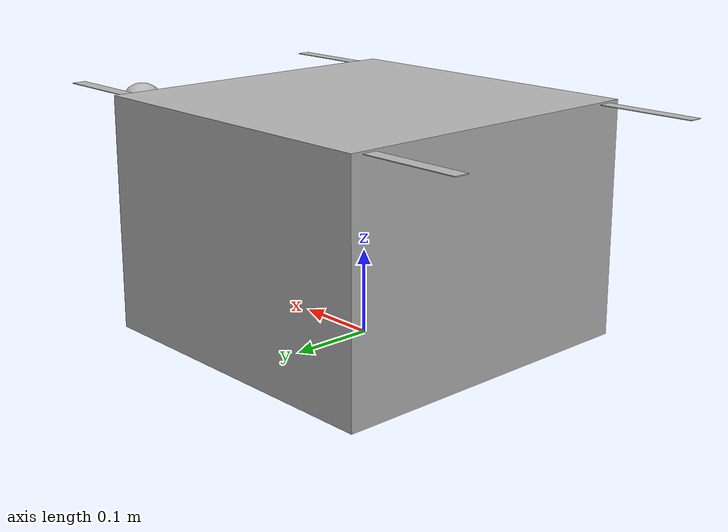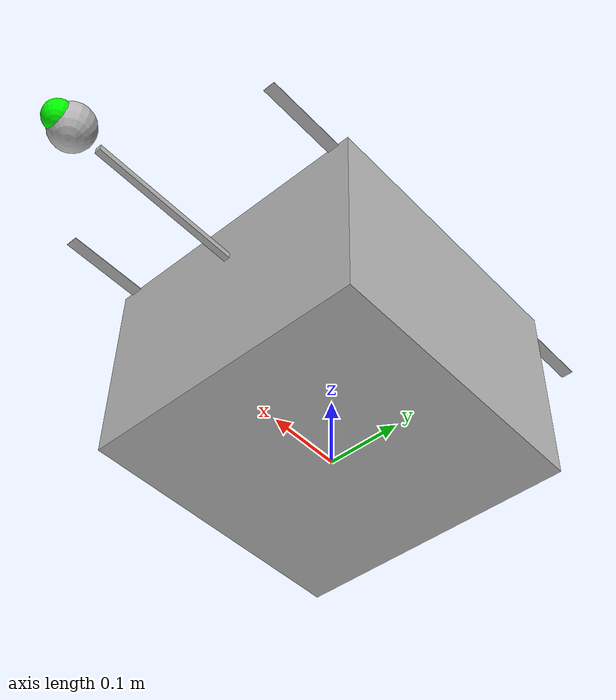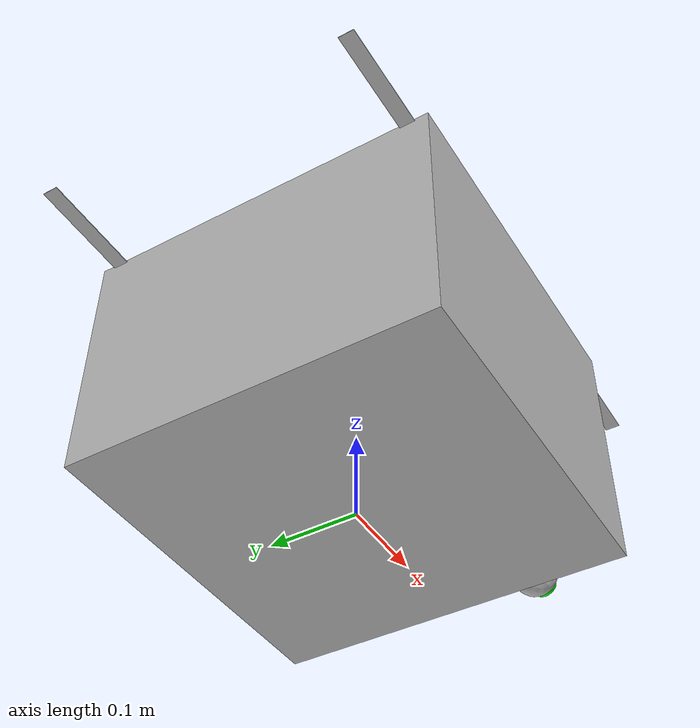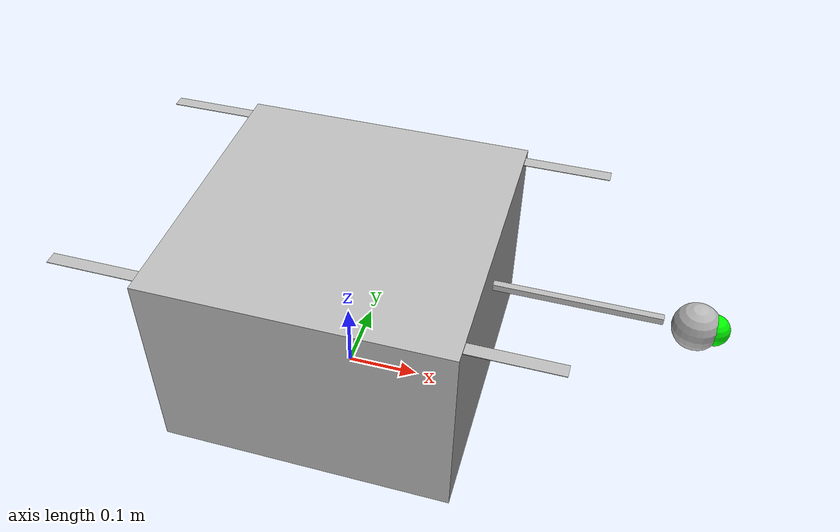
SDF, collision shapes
<?xml version="1.0" encoding="UTF-8"?>
<sdf version='1.9'>
  <model name='x500_dual_force'>
    <pose>0 0 0.217 0 0 0</pose>
    <self_collide>false</self_collide>
    <static>false</static>
    <link name="base_link">
    <inertial>
        <pose>0 0 0.015702 0 0 0</pose>
        <mass>2.247</mass>
        <inertia>
          <ixx>0.0133</ixx>
          <ixy>0</ixy>
          <ixz>0</ixz>
          <iyy>0.0133</iyy>
          <iyz>0</iyz>
          <izz>0.0249</izz>
        </inertia>
      </inertial>
      <gravity>true</gravity>
      <velocity_decay/>
      <visual name="base_link_visual">
        <pose>0 0 0 0 0 0</pose>
        <geometry>
          <mesh>
            <scale>1 1 1</scale>
            <uri>model://custom_x500_dual/meshes/uav_frame_x500_simple.dae</uri>
          </mesh>
        </geometry>
      </visual>
      <!-- Collision definition -->
      <collision name="base_link_collision_0">
        <pose> 0 0 -0.076276 0 0 0</pose>
        <geometry>
          <box>
            <size>0.40 0.40 0.278 </size>
          </box>
        </geometry>
        <surface>
          <contact>
            <ode>
              <min_depth>0.001</min_depth>
              <max_vel>0</max_vel>
            </ode>
          </contact>
          <friction>
            <ode/>
          </friction>
        </surface>
      </collision>
<!-- Collision definition END-->
<!-- Flight Sensors  -->
      <sensor name="air_pressure_sensor" type="air_pressure">
        <always_on>1</always_on>
        <update_rate>50</update_rate>
        <air_pressure>
          <pressure>
            <noise type="gaussian">
              <mean>0</mean>
              <stddev>0.01</stddev>
            </noise>
          </pressure>
        </air_pressure>
      </sensor>

      <sensor name="imu_sensor" type="imu">
        <always_on>1</always_on>
        <update_rate>250</update_rate>
      </sensor>
<!-- Flight Sensors  -->
    </link>
<!-- Propellers definition -->
    <link name="rotor_0">
        <gravity>true</gravity>
        <self_collide>false</self_collide>
        <velocity_decay/>
        <pose>0.176876 -0.176876 0.06 0 0 0</pose>
        <inertial>
            <pose>0 0 0 0 0 0</pose>
              <mass>0.005</mass>
              <inertia>
                <ixx>9.75e-07</ixx>
                <ixy>0</ixy>
                <ixz>0</ixz>
                <iyy>0.000166704</iyy>
                <iyz>0</iyz>
                <izz>0.000167604</izz>
              </inertia>
        </inertial>
       <visual name="rotor_0_visual">
        <pose>0 0 0 0 0 0</pose>
        <geometry>
          <mesh>
            <scale>1 1 1</scale>
            <uri>model://custom_x500_dual/meshes/holybro_propeller_ccw.dae</uri>
          </mesh>
        </geometry>
      </visual>
      <collision name="rotor_0_collision">
        <pose>0 0 0 0 0 0 </pose>
        <geometry>
          <box>
            <size>0.2792307692307692 0.016923076923076923 0.0008461538461538462</size>
          </box>
        </geometry>
        <surface>
          <contact>
            <ode>
              <min_depth>0.001</min_depth>
              <max_vel>0</max_vel>
            </ode>
          </contact>
          <friction>
            <ode/>
          </friction>
        </surface>
      </collision>
    </link>
    <joint name="rotor_0_joint" type="revolute">
      <parent>base_link</parent>
      <child>rotor_0</child>
      <axis>
        <xyz>0 0 1</xyz>
        <limit>
          <lower>-1e+16</lower>
          <upper>1e+16</upper>
        </limit>
        <dynamics>
          <spring_reference>0</spring_reference>
          <spring_stiffness>0</spring_stiffness>
        </dynamics>
      </axis>
    </joint>

    <link name="rotor_1">
        <gravity>true</gravity>
        <self_collide>false</self_collide>
        <velocity_decay/>
        <pose>-0.176876 0.176876 0.06 0 0 0</pose>
        <inertial>
            <pose>0 0 0 0 0 0</pose>
              <mass>0.005</mass>
              <inertia>
                <ixx>9.75e-07</ixx>
                <ixy>0</ixy>
                <ixz>0</ixz>
                <iyy>0.000166704</iyy>
                <iyz>0</iyz>
                <izz>0.000167604</izz>
              </inertia>
        </inertial>
       <visual name="rotor_1_visual">
        <pose>0 0 0 0 0 0</pose>
        <geometry>
          <mesh>
            <scale>1 1 1</scale>
            <uri>model://custom_x500_dual/meshes/holybro_propeller_ccw.dae</uri>
          </mesh>
        </geometry>
      </visual>
      <collision name="rotor_1_collision">
        <pose>0 0 0 0 0 0 </pose>
        <geometry>
          <box>
            <size>0.2792307692307692 0.016923076923076923 0.0008461538461538462</size>
          </box>
        </geometry>
        <surface>
          <contact>
            <ode>
              <min_depth>0.001</min_depth>
              <max_vel>0</max_vel>
            </ode>
          </contact>
          <friction>
            <ode/>
          </friction>
        </surface>
      </collision>
    </link>
    <joint name="rotor_1_joint" type="revolute">
      <parent>base_link</parent>
      <child>rotor_1</child>
      <axis>
        <xyz>0 0 1</xyz>
        <limit>
          <lower>-1e+16</lower>
          <upper>1e+16</upper>
        </limit>
        <dynamics>
          <spring_reference>0</spring_reference>
          <spring_stiffness>0</spring_stiffness>
        </dynamics>
      </axis>
    </joint>

    <link name="rotor_2">
        <gravity>true</gravity>
        <self_collide>false</self_collide>
        <velocity_decay/>
        <pose> 0.176876 0.176876 0.06 0 0 0</pose>
        <inertial>
            <pose>0 0 0 0 0 0</pose>
              <mass>0.005</mass>
              <inertia>
                <ixx>9.75e-07</ixx>
                <ixy>0</ixy>
                <ixz>0</ixz>
                <iyy>0.000166704</iyy>
                <iyz>0</iyz>
                <izz>0.000167604</izz>
              </inertia>
        </inertial>
       <visual name="rotor_2_visual">
        <pose>0 0 0 0 0 0</pose>
        <geometry>
          <mesh>
            <scale>1 1 1</scale>
            <uri>model://custom_x500_dual/meshes/holybro_propeller_cw.dae</uri>
          </mesh>
        </geometry>
      </visual>
      <collision name="rotor_2_collision">
        <pose>0 0 0 0 0 0 </pose>
        <geometry>
          <box>
            <size>0.2792307692307692 0.016923076923076923 0.0008461538461538462</size>
          </box>
        </geometry>
        <surface>
          <contact>
            <ode>
              <min_depth>0.001</min_depth>
              <max_vel>0</max_vel>
            </ode>
          </contact>
          <friction>
            <ode/>
          </friction>
        </surface>
      </collision>
    </link>
    <joint name="rotor_2_joint" type="revolute">
      <parent>base_link</parent>
      <child>rotor_2</child>
      <axis>
        <xyz>0 0 1</xyz>
        <limit>
          <lower>-1e+16</lower>
          <upper>1e+16</upper>
        </limit>
        <dynamics>
          <spring_reference>0</spring_reference>
          <spring_stiffness>0</spring_stiffness>
        </dynamics>
      </axis>
    </joint>

    <link name="rotor_3">
        <gravity>true</gravity>
        <self_collide>false</self_collide>
        <velocity_decay/>
        <pose> -0.176876 -0.176876 0.06 0 0 0</pose>
        <inertial>
            <pose>0 0 0 0 0 0</pose>
              <mass>0.005</mass>
              <inertia>
                <ixx>9.75e-07</ixx>
                <ixy>0</ixy>
                <ixz>0</ixz>
                <iyy>0.000166704</iyy>
                <iyz>0</iyz>
                <izz>0.000167604</izz>
              </inertia>
        </inertial>
       <visual name="rotor_3_visual">
        <pose>0 0 0 0 0 0</pose>
        <geometry>
          <mesh>
            <scale>1 1 1</scale>
            <uri>model://custom_x500_dual/meshes/holybro_propeller_cw.dae</uri>
          </mesh>
        </geometry>
      </visual>
      <collision name="rotor_3_collision">
        <pose>0 0 0 0 0 0 </pose>
        <geometry>
          <box>
            <size>0.2792307692307692 0.016923076923076923 0.0008461538461538462</size>
          </box>
        </geometry>
        <surface>
          <contact>
            <ode>
              <min_depth>0.001</min_depth>
              <max_vel>0</max_vel>
            </ode>
          </contact>
          <friction>
            <ode/>
          </friction>
        </surface>
      </collision>
    </link>
    <joint name="rotor_3_joint" type="revolute">
      <parent>base_link</parent>
      <child>rotor_3</child>
      <axis>
        <xyz>0 0 1</xyz>
        <limit>
          <lower>-1e+16</lower>
          <upper>1e+16</upper>
        </limit>
        <dynamics>
          <spring_reference>0</spring_reference>
          <spring_stiffness>0</spring_stiffness>
        </dynamics>
      </axis>
    </joint>
<!-- Propellers definition END-->
<!-- EDF Mass -->
  <link name="edf_1_ball">
        <gravity>true</gravity>
        <self_collide>false</self_collide>
        <velocity_decay/>
        <pose> 0.100 0 0.036 0 0 0 </pose>
        <inertial>
            <mass>0.175</mass>
            <inertia>
              <ixx>6.3787e-05</ixx>
              <iyy>8.6158e-05</iyy>
              <izz>8.6158e-05</izz>
            </inertia>
        </inertial>
    </link>

    <joint name="edf_1_mass" type="fixed">
      <parent>base_link</parent>
      <child>edf_1_ball</child>
    </joint>
<!-- EDF Mass -->

<!-- EDF Mass -->
  <link name="edf_2_ball">
        <gravity>true</gravity>
        <self_collide>false</self_collide>
        <velocity_decay/>
        <pose> -0.100 0 0.036 0 0 3.145159 </pose>
         <inertial>
            <mass>0.175</mass>
            <inertia>
              <ixx>6.3787e-05</ixx>
              <iyy>8.6158e-05</iyy>
              <izz>8.6158e-05</izz>
            </inertia>
        </inertial>
    </link>

    <joint name="edf_2_mass" type="fixed">
      <parent>base_link</parent>
      <child>edf_2_ball</child>
    </joint>
<!-- EDF Mass -->

<!-- EDF Frame 200 END -->
  <link name="edf_1_body">
        <gravity>true</gravity>
        <self_collide>false</self_collide>
        <velocity_decay/>
        <pose> 0.100 0 0.016 0 0 0 </pose>
        <inertial>
          <mass>0.00000001</mass>
          <inertia>
            <ixx>0.000001</ixx>
            <ixy>0.0</ixy>
            <iyy>0.000001</iyy>
            <ixz>0.0</ixz>
            <iyz>0.0</iyz>
            <izz>0.000001</izz>
          </inertia>
        </inertial>
       <visual name="edf_1_visual">
        <pose>0 0 0 0 0 0</pose>
        <geometry>
          <mesh>
            <scale>1 1 1</scale>
            <uri>model://custom_x500_dual/meshes/edf_housing.dae</uri>
          </mesh>
        </geometry>
      </visual>
      <collision name="edf_1_collision">
        <pose>0 0 0 0 0 0 </pose>
        <geometry>
          <box>
            <size>0.01 0.01 0.01</size>
          </box>
        </geometry>
        <surface>
          <contact>
            <ode>
              <min_depth>0.001</min_depth>
              <max_vel>0</max_vel>
            </ode>
          </contact>
          <friction>
            <ode/>
          </friction>
        </surface>
      </collision>
    </link>
    <joint name="edf_1_joint" type="revolute">
      <parent>base_link</parent>
      <child>edf_1_body</child>
      <pose> 0 0 0 0 0 0 </pose>
      <axis>
        <xyz>0 0 1</xyz>
        <limit>
          <lower>-0.53</lower>
          <upper>0.53</upper>
        </limit>
        <dynamics>
          <friction>1.0</friction>
          <spring_reference>0</spring_reference>
          <spring_stiffness>0</spring_stiffness>
        </dynamics>
      </axis>
    </joint>

    <link name="edf_2_body">
        <gravity>true</gravity>
        <self_collide>false</self_collide>
        <velocity_decay/>
        <pose> -0.100 0 0.016 0 0 3.145159 </pose>
        <inertial>
          <mass>0.00000001</mass>
          <inertia>
            <ixx>0.000001</ixx>
            <ixy>0.0</ixy>
            <iyy>0.000001</iyy>
            <ixz>0.0</ixz>
            <iyz>0.0</iyz>
            <izz>0.000001</izz>
          </inertia>
        </inertial>
      <visual name="edf_2_visual">
        <pose>0 0 0 0 0 0</pose>
        <geometry>
          <mesh>
            <scale>1 1 1</scale>
            <uri>model://custom_x500_dual/meshes/edf_housing.dae</uri>
          </mesh>
        </geometry>
      </visual>
      <collision name="edf_2_collision">
        <pose>0 0 0 0 0 0 </pose>
        <geometry>
          <box>
            <size>0.01 0.01 0.01</size>
          </box>
        </geometry>
        <surface>
          <contact>
            <ode>
              <min_depth>0.001</min_depth>
              <max_vel>0</max_vel>
            </ode>
          </contact>
          <friction>
            <ode/>
          </friction>
        </surface>
      </collision>
    </link>
    <joint name="edf_2_joint" type="revolute">
      <parent>base_link</parent>
      <child>edf_2_body</child>
      <pose> 0 0 0 0 0 0 </pose>
      <axis>
        <xyz>0 0 1</xyz>
        <limit>
          <lower>-0.53</lower>
          <upper>0.53</upper>
        </limit>
        <dynamics>
          <friction>1.0</friction>
          <spring_reference>0</spring_reference>
          <spring_stiffness>0</spring_stiffness>
        </dynamics>
      </axis>
    </joint>

<!-- Horizontal thrusters -->
    <link name="rotor_5">
        <gravity>true</gravity>
        <self_collide>false</self_collide>
        <velocity_decay/>
        <pose> -0.100 0 0.016 0 1.5708 0</pose>
        <inertial>
            <pose>0 0 0 0 0 0</pose>
              <mass>0.005</mass>
              <inertia>
                <ixx>9.75e-07</ixx>
                <ixy>0</ixy>
                <ixz>0</ixz>
                <iyy>0.000166704</iyy>
                <iyz>0</iyz>
                <izz>0.000167604</izz>
              </inertia>
        </inertial>
       <visual name="rotor_5_visual">
        <pose>0 0 0 0 0 0</pose>
        <geometry>
          <mesh>
            <scale>1 1 1</scale>
            <uri>model://custom_x500_dual/meshes/edf_impeler.dae</uri>
          </mesh>
        </geometry>
      </visual>
      <collision name="rotor_5_collision">
        <pose>0 0 0 0 0 0 </pose>
        <geometry>
          <box>
            <size>0.0008461538461538462 0.016923076923076923 0.004</size>
          </box>
        </geometry>
        <surface>
          <contact>
            <ode>
              <min_depth>0.001</min_depth>
              <max_vel>0</max_vel>
            </ode>
          </contact>
          <friction>
            <ode/>
          </friction>
        </surface>
      </collision>
    </link>
    <joint name="rotor_5_joint" type="revolute">
      <parent>edf_2_body</parent>
      <child>rotor_5</child>
      <axis>
        <xyz>0 0 1</xyz>
        <limit>
          <lower>-1e+16</lower>
          <upper>1e+16</upper>
        </limit>
        <dynamics>
          <spring_reference>0</spring_reference>
          <spring_stiffness>0</spring_stiffness>
        </dynamics>
      </axis>
    </joint>

    <link name="rotor_4">
        <gravity>true</gravity>
        <self_collide>false</self_collide>
        <velocity_decay/>
        <pose> 0.100 0 0.016  0 1.5708 3.145159</pose>
        <inertial>
            <pose>0 0 0 0 0 0</pose>
              <mass>0.005</mass>
              <inertia>
                <ixx>9.75e-07</ixx>
                <ixy>0</ixy>
                <ixz>0</ixz>
                <iyy>0.000166704</iyy>
                <iyz>0</iyz>
                <izz>0.000167604</izz>
              </inertia>
        </inertial>
       <visual name="rotor_4_visual">
        <pose>0 0 0 0 0 0</pose>
        <geometry>
          <mesh>
            <scale>1 1 1</scale>
            <uri>model://custom_x500_dual/meshes/edf_impeler.dae</uri>
          </mesh>
        </geometry>
      </visual>
      <collision name="rotor_4_collision">
        <pose>0 0 0 0 0 0 </pose>
        <geometry>
          <box>
            <size>0.0008461538461538462 0.016923076923076923 0.004</size>
          </box>
        </geometry>
        <surface>
          <contact>
            <ode>
              <min_depth>0.001</min_depth>
              <max_vel>0</max_vel>
            </ode>
          </contact>
          <friction>
            <ode/>
          </friction>
        </surface>
      </collision>
    </link>

    <joint name="rotor_4_joint" type="revolute">
      <parent>edf_1_body</parent>
      <child>rotor_4</child>
      <axis>
        <xyz>0 0 1</xyz>
        <limit>
          <lower>-1e+16</lower>
          <upper>1e+16</upper>
        </limit>
        <dynamics>
          <spring_reference>0</spring_reference>
          <spring_stiffness>0</spring_stiffness>
        </dynamics>
      </axis>
    </joint>
<!-- Manipulator arm  END -->
<!-- Manipulator arm  -->
    <link name="manipulator_arm">
        <gravity>true</gravity>
        <self_collide>false</self_collide>
        <velocity_decay/>
        <pose> 0.40 0 -0.0086 0 0 0 </pose>
        <inertial>
          <pose> -0.207 0 0 0 0 0</pose>
          <mass>0.16</mass>
          <inertia>
            <ixx>1.8727e-05</ixx>
            <iyy>0.0027</iyy>
            <izz>0.0027</izz>
        </inertia>
        </inertial>
       <visual name="manipulator_arm_visual">
        <pose>0 0 0 0 0 0</pose>
        <geometry>
          <mesh>
            <scale>1 1 1</scale>
            <uri>model://x500_dual_force/meshes/manipulator_arm.dae</uri>
          </mesh>
        </geometry>
      </visual>
      <collision name="manipulator_arm_collision">
        <pose> -0.207 0 0 0 0 0 </pose>
        <geometry>
          <box>
            <size>0.444 0.009 0.009 </size>
          </box>
        </geometry>
        <surface>
          <contact>
            <ode>
              <min_depth>0.001</min_depth>
              <max_vel>0</max_vel>
            </ode>
          </contact>
          <friction>
            <ode/>
          </friction>
        </surface>
      </collision>
    </link>

    <joint name="manipulator_arm_joint" type="fixed">
      <parent>base_link</parent>
      <child>manipulator_arm</child>
    </joint>

     <link name="manipulator_tip">
        <gravity>true</gravity>
        <self_collide>false</self_collide>
        <velocity_decay/>
        <pose> 0.420 0 -0.0086 0 0 3.14159 </pose>
        <inertial>
          <pose>-0.030522 0 0 0 0 0 </pose>
          <mass>0.05</mass>
          <inertia>
            <ixx>1.8225e-05</ixx>
            <iyy>2.4614e-05</iyy>
            <izz>2.4614e-05</izz>
        </inertia>
        </inertial>
       <visual name="manipulator_tip_visual">
        <pose>0 0 0 0 0 0</pose>
        <geometry>
          <mesh>
            <scale>1 1 1</scale>
            <uri>model://x500_dual_force/meshes/manipulator_tip.dae</uri>
          </mesh>
        </geometry>
      </visual>
      <collision name="manipulator_tip_collision">
        <pose>-0.034296 0 0 0 0 0 </pose>
        <geometry>
          <sphere>
            <radius>0.03</radius> <!-- Adjust the radius as needed -->
          </sphere>
        </geometry>
        <surface>
          <contact>
            <ode>
              <min_depth>0.001</min_depth>
              <max_vel>0</max_vel>
            </ode>
          </contact>
          <friction>
            <ode/>
          </friction>
        </surface>
      </collision>
    </link>

    <joint name="manipulator_tip_joint" type="fixed">
      <parent>manipulator_arm</parent>
      <child>manipulator_tip</child>
      <pose> 0 0 0 0 -1.5708 0 </pose>
        <sensor name= 'forcetorque' type='force_torque'>
            <always_on>true</always_on>
            <update_rate>100.0</update_rate>
            <visualize>true</visualize>
            <force_torque>
                <frame>sensor</frame>
                <measure_direction>child_to_parent</measure_direction>
            </force_torque>
            <topic>leptrino_force_sensor/sensor_wrench</topic>
        </sensor>
    </joint>

    <frame name="caster_frame" attached_to='manipulator_tip'>
    </frame>

<!--caster wheel-->
    <link name='caster'>
        <pose>0.475 0 -0.0086  0 0 0 </pose>
        <velocity_decay/>
            <inertial>
            <mass>0.001</mass>
            <inertia>
                <ixx>0.1</ixx>
                <ixy>0</ixy>
                <ixz>0</ixz>
                <iyy>0.1</iyy>
                <iyz>0</iyz>
                <izz>0.1</izz>
            </inertia>
        </inertial>
        <visual name='visual'>
            <geometry>
                <sphere>
                    <radius>0.02</radius>
                </sphere>
            </geometry>
            <material>
                <ambient>0.0 1 0.0 1</ambient>
                <diffuse>0.0 1 0.0 1</diffuse>
                <specular>0.0 1 0.0 1</specular>
            </material>
        </visual>
        <collision name='collision'>
            <geometry>
              <sphere>
                  <radius>0.02</radius>
              </sphere>
            </geometry>
            <surface>
              <friction>
                <ode>
                  <mu>0.6</mu>  <!-- Typical coefficient for metal cast -->
                  <mu2>0.6</mu2> <!-- Secondary coefficient, often same as mu for isotropic materials -->
                  <fdir1>0 0 0</fdir1> <!-- Automatic computation -->
                  <slip1>0.0</slip1> <!-- No slip for realistic static friction -->
                  <slip2>0.0</slip2> <!-- No slip for realistic static friction -->
                </ode>
                <bullet>
                  <friction>
                    <friction>0.6</friction> <!-- Primary friction coefficient -->
                    <friction2>0.6</friction2> <!-- Secondary friction coefficient -->
                    <fdir1>0 0 0</fdir1> <!-- Automatic computation -->
                    <rolling_friction>0.01</rolling_friction> <!-- No rolling friction -->
                  </friction>
                </bullet>
              </friction>
            </surface>
        </collision>
    </link>
<!--different type of joints ball joint--> <!--defult value is the child-->
    <joint name='chassis' type='ball'>
      <parent>caster_frame</parent>
      <child>caster</child>
    </joint>

<!-- Manipulator arm  END -->
<!-- Additional Rotors 4,5END -->

   <plugin filename="gz-sim-multicopter-motor-model-system" name="gz::sim::systems::MulticopterMotorModel">
      <jointName>rotor_0_joint</jointName>
      <linkName>rotor_0</linkName>
      <turningDirection>ccw</turningDirection>
      <timeConstantUp>0.0125</timeConstantUp>
      <timeConstantDown>0.025</timeConstantDown>
      <maxRotVelocity>10920.0</maxRotVelocity>
      <motorConstant>12.1311e-06</motorConstant>
      <momentConstant>0.016</momentConstant>
      <commandSubTopic>command/motor_speed</commandSubTopic>
      <motorNumber>0</motorNumber>
      <rotorDragCoefficient>8.06428e-05</rotorDragCoefficient>
      <rollingMomentCoefficient>1e-06</rollingMomentCoefficient>
      <rotorVelocitySlowdownSim>10</rotorVelocitySlowdownSim>
      <motorType>velocity</motorType>
    </plugin>
    <plugin filename="gz-sim-multicopter-motor-model-system" name="gz::sim::systems::MulticopterMotorModel">
      <jointName>rotor_1_joint</jointName>
      <linkName>rotor_1</linkName>
      <turningDirection>ccw</turningDirection>
      <timeConstantUp>0.0125</timeConstantUp>
      <timeConstantDown>0.025</timeConstantDown>
     <maxRotVelocity>10920.0</maxRotVelocity>
      <motorConstant>12.1311e-06</motorConstant>
      <momentConstant>0.016</momentConstant>
      <commandSubTopic>command/motor_speed</commandSubTopic>
      <motorNumber>1</motorNumber>
      <rotorDragCoefficient>8.06428e-05</rotorDragCoefficient>
      <rollingMomentCoefficient>1e-06</rollingMomentCoefficient>
      <rotorVelocitySlowdownSim>10</rotorVelocitySlowdownSim>
      <motorType>velocity</motorType>
    </plugin>
    <plugin filename="gz-sim-multicopter-motor-model-system" name="gz::sim::systems::MulticopterMotorModel">
      <jointName>rotor_2_joint</jointName>
      <linkName>rotor_2</linkName>
      <turningDirection>cw</turningDirection>
      <timeConstantUp>0.0125</timeConstantUp>
      <timeConstantDown>0.025</timeConstantDown>
      <maxRotVelocity>10920.0</maxRotVelocity>
      <motorConstant>12.1311e-06</motorConstant>
      <momentConstant>0.016</momentConstant>
      <commandSubTopic>command/motor_speed</commandSubTopic>
      <motorNumber>2</motorNumber>
      <rotorDragCoefficient>8.06428e-05</rotorDragCoefficient>
      <rollingMomentCoefficient>1e-06</rollingMomentCoefficient>
      <rotorVelocitySlowdownSim>10</rotorVelocitySlowdownSim>
      <motorType>velocity</motorType>
    </plugin>
    <plugin filename="gz-sim-multicopter-motor-model-system" name="gz::sim::systems::MulticopterMotorModel">
      <jointName>rotor_3_joint</jointName>
      <linkName>rotor_3</linkName>
      <turningDirection>cw</turningDirection>
      <timeConstantUp>0.0125</timeConstantUp>
      <timeConstantDown>0.025</timeConstantDown>
     <maxRotVelocity>10920.0</maxRotVelocity>
      <motorConstant>12.1311e-06</motorConstant>
      <momentConstant>0.016</momentConstant>
      <commandSubTopic>command/motor_speed</commandSubTopic>
      <motorNumber>3</motorNumber>
      <rotorDragCoefficient>8.06428e-05</rotorDragCoefficient>
      <rollingMomentCoefficient>1e-06</rollingMomentCoefficient>
      <rotorVelocitySlowdownSim>10</rotorVelocitySlowdownSim>
      <motorType>velocity</motorType>
    </plugin>

    <!-- Horizontal thrusters -->
    <plugin filename="gz-sim-multicopter-motor-model-system" name="gz::sim::systems::MulticopterMotorModel">
      <jointName>rotor_4_joint</jointName>
      <linkName>rotor_4</linkName>
      <turningDirection>ccw</turningDirection>
      <timeConstantUp>0.0125</timeConstantUp>
      <timeConstantDown>0.025</timeConstantDown>
      <maxRotVelocity>1000.0</maxRotVelocity>
      <motorConstant>9.54858e-06</motorConstant>
      <momentConstant>0.016</momentConstant>
      <commandSubTopic>command/motor_speed</commandSubTopic>
      <motorNumber>4</motorNumber>
      <rotorDragCoefficient>8.06428e-05</rotorDragCoefficient>
      <rollingMomentCoefficient>1e-06</rollingMomentCoefficient>
      <rotorVelocitySlowdownSim>10</rotorVelocitySlowdownSim>
      <motorType>velocity</motorType>
    </plugin>

    <plugin filename="gz-sim-multicopter-motor-model-system" name="gz::sim::systems::MulticopterMotorModel">
      <jointName>rotor_5_joint</jointName>
      <linkName>rotor_5</linkName>
      <turningDirection>ccw</turningDirection>
      <timeConstantUp>0.0125</timeConstantUp>
      <timeConstantDown>0.025</timeConstantDown>
      <maxRotVelocity>1000.0</maxRotVelocity>
      <motorConstant>9.54858e-06</motorConstant>
      <momentConstant>0.016</momentConstant>
      <commandSubTopic>command/motor_speed</commandSubTopic>
      <motorNumber>5</motorNumber>
      <rotorDragCoefficient>8.06428e-05</rotorDragCoefficient>
      <rollingMomentCoefficient>1e-06</rollingMomentCoefficient>
      <rotorVelocitySlowdownSim>10</rotorVelocitySlowdownSim>
      <motorType>velocity</motorType>
    </plugin>
<!-- Horizontal thrusters END-->

  </model>
</sdf>
